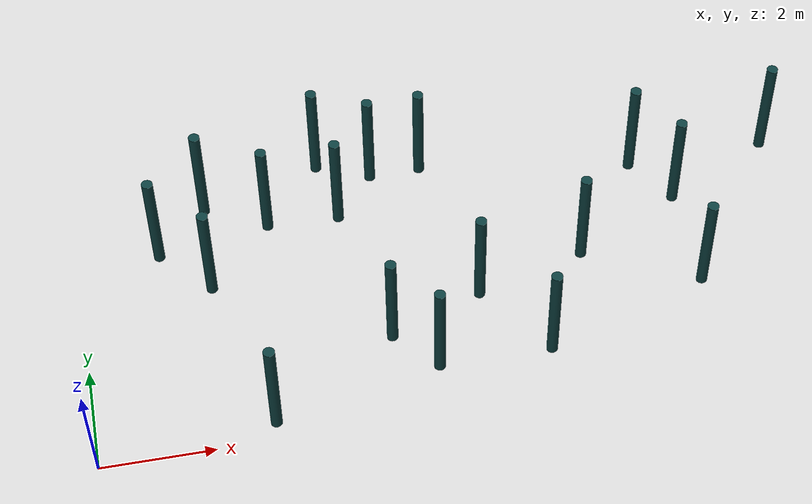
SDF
<sdf version="1.6">
 <world name="default">
  <model name="obstacle">
   <link name="link">
    <inertial>
     <mass>112.569</mass>
     <inertia><ixx>33.2512</ixx><ixy>0</ixy><ixz>0</ixz><iyy>33.2512</iyy><iyz>0</iyz><izz>0.537779</izz></inertia>
    </inertial>
    <visual name="visual">
     <geometry><cylinder><radius>0.1</radius><length>2</length></cylinder></geometry>
     <material>
      <script><name>Gazebo/Grey</name><uri>file://media/materials/scripts/gazebo.material</uri></script>
      <shader type="pixel"><normal_map>__default__</normal_map></shader>
      <ambient>0.05 0.25 0.25 1</ambient>
      <diffuse>0.3 0.3 0.3 1</diffuse>
      <specular>0.01 0.01 0.01 1</specular>
      <emissive>0.1 0.1 0.1 1</emissive>
      <lighting>1</lighting>
     </material>
    </visual>
    <collision name="collision">
     <geometry><cylinder><radius>0.097748</radius><length>1.87509</length></cylinder></geometry>
     <surface>
      <friction>
       <ode><mu>1</mu><mu2>1</mu2><fdir1>0 0 0</fdir1><slip1>0</slip1><slip2>0</slip2></ode>
       <torsional>
        <coefficient>1</coefficient>
        <patch_radius>0</patch_radius>
        <surface_radius>0</surface_radius>
        <use_patch_radius>1</use_patch_radius>
        <ode><slip>0</slip></ode>
       </torsional>
      </friction>
      <bounce><restitution_coefficient>0</restitution_coefficient><threshold>1e+06</threshold></bounce>
      <contact>
       <collide_without_contact>0</collide_without_contact>
       <collide_without_contact_bitmask>1</collide_without_contact_bitmask>
       <collide_bitmask>1</collide_bitmask>
       <ode>
        <soft_cfm>0</soft_cfm>
        <soft_erp>0.2</soft_erp>
        <kp>1e+13</kp>
        <kd>1</kd>
        <max_vel>0.01</max_vel>
        <min_depth>0</min_depth>
       </ode>
       <bullet>
        <split_impulse>1</split_impulse>
        <split_impulse_penetration_threshold>-0.01</split_impulse_penetration_threshold>
        <soft_cfm>0</soft_cfm>
        <soft_erp>0.2</soft_erp>
        <kp>1e+13</kp>
        <kd>1</kd>
       </bullet>
      </contact>
     </surface>
    </collision>
   </link>
   <static>0</static>
   <pose>6.48526 5.60754 0.987551 -5.8e-05 3e-05 0.00436</pose>
  </model>
  <model name="obstacle_clone">
   <link name="link">
    <inertial>
     <mass>112.569</mass>
     <inertia><ixx>33.2512</ixx><ixy>0</ixy><ixz>0</ixz><iyy>33.2512</iyy><iyz>0</iyz><izz>0.537779</izz></inertia>
    </inertial>
    <visual name="visual">
     <geometry><cylinder><radius>0.1</radius><length>2</length></cylinder></geometry>
     <material>
      <script><name>Gazebo/Grey</name><uri>file://media/materials/scripts/gazebo.material</uri></script>
      <shader type="pixel"><normal_map>__default__</normal_map></shader>
      <ambient>0.05 0.25 0.25 1</ambient>
      <diffuse>0.3 0.3 0.3 1</diffuse>
      <specular>0.01 0.01 0.01 1</specular>
      <emissive>0.1 0.1 0.1 1</emissive>
      <lighting>1</lighting>
     </material>
    </visual>
    <collision name="collision">
     <geometry><cylinder><radius>0.097748</radius><length>1.87509</length></cylinder></geometry>
     <surface>
      <friction>
       <ode><mu>1</mu><mu2>1</mu2><fdir1>0 0 0</fdir1><slip1>0</slip1><slip2>0</slip2></ode>
       <torsional>
        <coefficient>1</coefficient>
        <patch_radius>0</patch_radius>
        <surface_radius>0</surface_radius>
        <use_patch_radius>1</use_patch_radius>
        <ode><slip>0</slip></ode>
       </torsional>
      </friction>
      <bounce><restitution_coefficient>0</restitution_coefficient><threshold>1e+06</threshold></bounce>
      <contact>
       <collide_without_contact>0</collide_without_contact>
       <collide_without_contact_bitmask>1</collide_without_contact_bitmask>
       <collide_bitmask>1</collide_bitmask>
       <ode>
        <soft_cfm>0</soft_cfm>
        <soft_erp>0.2</soft_erp>
        <kp>1e+13</kp>
        <kd>1</kd>
        <max_vel>0.01</max_vel>
        <min_depth>0</min_depth>
       </ode>
       <bullet>
        <split_impulse>1</split_impulse>
        <split_impulse_penetration_threshold>-0.01</split_impulse_penetration_threshold>
        <soft_cfm>0</soft_cfm>
        <soft_erp>0.2</soft_erp>
        <kp>1e+13</kp>
        <kd>1</kd>
       </bullet>
      </contact>
     </surface>
    </collision>
   </link>
   <static>0</static>
   <pose>1.45905 4.37795 0.987544 -3.5e-05 8e-06 0.003637</pose>
  </model>
  <model name="obstacle_clone_0">
   <link name="link">
    <inertial>
     <mass>112.569</mass>
     <inertia><ixx>33.2512</ixx><ixy>0</ixy><ixz>0</ixz><iyy>33.2512</iyy><iyz>0</iyz><izz>0.537779</izz></inertia>
    </inertial>
    <visual name="visual">
     <geometry><cylinder><radius>0.1</radius><length>2</length></cylinder></geometry>
     <material>
      <script><name>Gazebo/Grey</name><uri>file://media/materials/scripts/gazebo.material</uri></script>
      <shader type="pixel"><normal_map>__default__</normal_map></shader>
      <ambient>0.05 0.25 0.25 1</ambient>
      <diffuse>0.3 0.3 0.3 1</diffuse>
      <specular>0.01 0.01 0.01 1</specular>
      <emissive>0.1 0.1 0.1 1</emissive>
      <lighting>1</lighting>
     </material>
    </visual>
    <collision name="collision">
     <geometry><cylinder><radius>0.097748</radius><length>1.87509</length></cylinder></geometry>
     <surface>
      <friction>
       <ode><mu>1</mu><mu2>1</mu2><fdir1>0 0 0</fdir1><slip1>0</slip1><slip2>0</slip2></ode>
       <torsional>
        <coefficient>1</coefficient>
        <patch_radius>0</patch_radius>
        <surface_radius>0</surface_radius>
        <use_patch_radius>1</use_patch_radius>
        <ode><slip>0</slip></ode>
       </torsional>
      </friction>
      <bounce><restitution_coefficient>0</restitution_coefficient><threshold>1e+06</threshold></bounce>
      <contact>
       <collide_without_contact>0</collide_without_contact>
       <collide_without_contact_bitmask>1</collide_without_contact_bitmask>
       <collide_bitmask>1</collide_bitmask>
       <ode>
        <soft_cfm>0</soft_cfm>
        <soft_erp>0.2</soft_erp>
        <kp>1e+13</kp>
        <kd>1</kd>
        <max_vel>0.01</max_vel>
        <min_depth>0</min_depth>
       </ode>
       <bullet>
        <split_impulse>1</split_impulse>
        <split_impulse_penetration_threshold>-0.01</split_impulse_penetration_threshold>
        <soft_cfm>0</soft_cfm>
        <soft_erp>0.2</soft_erp>
        <kp>1e+13</kp>
        <kd>1</kd>
       </bullet>
      </contact>
     </surface>
    </collision>
   </link>
   <static>0</static>
   <pose>3.49251 4.73719 0.987541 -5.7e-05 2.6e-05 0.006761</pose>
  </model>
  <model name="obstacle_clone_1">
   <link name="link">
    <inertial>
     <mass>112.569</mass>
     <inertia><ixx>33.2512</ixx><ixy>0</ixy><ixz>0</ixz><iyy>33.2512</iyy><iyz>0</iyz><izz>0.537779</izz></inertia>
    </inertial>
    <visual name="visual">
     <geometry><cylinder><radius>0.1</radius><length>2</length></cylinder></geometry>
     <material>
      <script><name>Gazebo/Grey</name><uri>file://media/materials/scripts/gazebo.material</uri></script>
      <shader type="pixel"><normal_map>__default__</normal_map></shader>
      <ambient>0.05 0.25 0.25 1</ambient>
      <diffuse>0.3 0.3 0.3 1</diffuse>
      <specular>0.01 0.01 0.01 1</specular>
      <emissive>0.1 0.1 0.1 1</emissive>
      <lighting>1</lighting>
     </material>
    </visual>
    <collision name="collision">
     <geometry><cylinder><radius>0.097748</radius><length>1.87509</length></cylinder></geometry>
     <surface>
      <friction>
       <ode><mu>1</mu><mu2>1</mu2><fdir1>0 0 0</fdir1><slip1>0</slip1><slip2>0</slip2></ode>
       <torsional>
        <coefficient>1</coefficient>
        <patch_radius>0</patch_radius>
        <surface_radius>0</surface_radius>
        <use_patch_radius>1</use_patch_radius>
        <ode><slip>0</slip></ode>
       </torsional>
      </friction>
      <bounce><restitution_coefficient>0</restitution_coefficient><threshold>1e+06</threshold></bounce>
      <contact>
       <collide_without_contact>0</collide_without_contact>
       <collide_without_contact_bitmask>1</collide_without_contact_bitmask>
       <collide_bitmask>1</collide_bitmask>
       <ode>
        <soft_cfm>0</soft_cfm>
        <soft_erp>0.2</soft_erp>
        <kp>1e+13</kp>
        <kd>1</kd>
        <max_vel>0.01</max_vel>
        <min_depth>0</min_depth>
       </ode>
       <bullet>
        <split_impulse>1</split_impulse>
        <split_impulse_penetration_threshold>-0.01</split_impulse_penetration_threshold>
        <soft_cfm>0</soft_cfm>
        <soft_erp>0.2</soft_erp>
        <kp>1e+13</kp>
        <kd>1</kd>
       </bullet>
      </contact>
     </surface>
    </collision>
   </link>
   <static>0</static>
   <pose>5.30401 1.78357 0.987542 -6e-05 2.8e-05 0.006723</pose>
  </model>
  <model name="obstacle_clone_4">
   <link name="link">
    <inertial>
     <mass>112.569</mass>
     <inertia><ixx>33.2512</ixx><ixy>0</ixy><ixz>0</ixz><iyy>33.2512</iyy><iyz>0</iyz><izz>0.537779</izz></inertia>
    </inertial>
    <visual name="visual">
     <geometry><cylinder><radius>0.1</radius><length>2</length></cylinder></geometry>
     <material>
      <script><name>Gazebo/Grey</name><uri>file://media/materials/scripts/gazebo.material</uri></script>
      <shader type="pixel"><normal_map>__default__</normal_map></shader>
      <ambient>0.05 0.25 0.25 1</ambient>
      <diffuse>0.3 0.3 0.3 1</diffuse>
      <specular>0.01 0.01 0.01 1</specular>
      <emissive>0.1 0.1 0.1 1</emissive>
      <lighting>1</lighting>
     </material>
    </visual>
    <collision name="collision">
     <geometry><cylinder><radius>0.097748</radius><length>1.87509</length></cylinder></geometry>
     <surface>
      <friction>
       <ode><mu>1</mu><mu2>1</mu2><fdir1>0 0 0</fdir1><slip1>0</slip1><slip2>0</slip2></ode>
       <torsional>
        <coefficient>1</coefficient>
        <patch_radius>0</patch_radius>
        <surface_radius>0</surface_radius>
        <use_patch_radius>1</use_patch_radius>
        <ode><slip>0</slip></ode>
       </torsional>
      </friction>
      <bounce><restitution_coefficient>0</restitution_coefficient><threshold>1e+06</threshold></bounce>
      <contact>
       <collide_without_contact>0</collide_without_contact>
       <collide_without_contact_bitmask>1</collide_without_contact_bitmask>
       <collide_bitmask>1</collide_bitmask>
       <ode>
        <soft_cfm>0</soft_cfm>
        <soft_erp>0.2</soft_erp>
        <kp>1e+13</kp>
        <kd>1</kd>
        <max_vel>0.01</max_vel>
        <min_depth>0</min_depth>
       </ode>
       <bullet>
        <split_impulse>1</split_impulse>
        <split_impulse_penetration_threshold>-0.01</split_impulse_penetration_threshold>
        <soft_cfm>0</soft_cfm>
        <soft_erp>0.2</soft_erp>
        <kp>1e+13</kp>
        <kd>1</kd>
       </bullet>
      </contact>
     </surface>
    </collision>
   </link>
   <static>0</static>
   <pose>7.00036 2.43391 0.987542 -5.6e-05 2.9e-05 0.006587</pose>
  </model>
  <model name="obstacle_clone_7">
   <link name="link">
    <inertial>
     <mass>112.569</mass>
     <inertia><ixx>33.2512</ixx><ixy>0</ixy><ixz>0</ixz><iyy>33.2512</iyy><iyz>0</iyz><izz>0.537779</izz></inertia>
    </inertial>
    <visual name="visual">
     <geometry><cylinder><radius>0.1</radius><length>2</length></cylinder></geometry>
     <material>
      <script><name>Gazebo/Grey</name><uri>file://media/materials/scripts/gazebo.material</uri></script>
      <shader type="pixel"><normal_map>__default__</normal_map></shader>
      <ambient>0.05 0.25 0.25 1</ambient>
      <diffuse>0.3 0.3 0.3 1</diffuse>
      <specular>0.01 0.01 0.01 1</specular>
      <emissive>0.1 0.1 0.1 1</emissive>
      <lighting>1</lighting>
     </material>
    </visual>
    <collision name="collision">
     <geometry><cylinder><radius>0.097748</radius><length>1.87509</length></cylinder></geometry>
     <surface>
      <friction>
       <ode><mu>1</mu><mu2>1</mu2><fdir1>0 0 0</fdir1><slip1>0</slip1><slip2>0</slip2></ode>
       <torsional>
        <coefficient>1</coefficient>
        <patch_radius>0</patch_radius>
        <surface_radius>0</surface_radius>
        <use_patch_radius>1</use_patch_radius>
        <ode><slip>0</slip></ode>
       </torsional>
      </friction>
      <bounce><restitution_coefficient>0</restitution_coefficient><threshold>1e+06</threshold></bounce>
      <contact>
       <collide_without_contact>0</collide_without_contact>
       <collide_without_contact_bitmask>1</collide_without_contact_bitmask>
       <collide_bitmask>1</collide_bitmask>
       <ode>
        <soft_cfm>0</soft_cfm>
        <soft_erp>0.2</soft_erp>
        <kp>1e+13</kp>
        <kd>1</kd>
        <max_vel>0.01</max_vel>
        <min_depth>0</min_depth>
       </ode>
       <bullet>
        <split_impulse>1</split_impulse>
        <split_impulse_penetration_threshold>-0.01</split_impulse_penetration_threshold>
        <soft_cfm>0</soft_cfm>
        <soft_erp>0.2</soft_erp>
        <kp>1e+13</kp>
        <kd>1</kd>
       </bullet>
      </contact>
     </surface>
    </collision>
   </link>
   <static>0</static>
   <pose>2.31368 3.4611 0.987545 -2.9e-05 -4.3e-05 0.004628</pose>
  </model>
  <model name="obstacle_clone_10">
   <link name="link">
    <inertial>
     <mass>112.569</mass>
     <inertia><ixx>33.2512</ixx><ixy>0</ixy><ixz>0</ixz><iyy>33.2512</iyy><iyz>0</iyz><izz>0.537779</izz></inertia>
    </inertial>
    <visual name="visual">
     <geometry><cylinder><radius>0.1</radius><length>2</length></cylinder></geometry>
     <material>
      <script><name>Gazebo/Grey</name><uri>file://media/materials/scripts/gazebo.material</uri></script>
      <shader type="pixel"><normal_map>__default__</normal_map></shader>
      <ambient>0.05 0.25 0.25 1</ambient>
      <diffuse>0.3 0.3 0.3 1</diffuse>
      <specular>0.01 0.01 0.01 1</specular>
      <emissive>0.1 0.1 0.1 1</emissive>
      <lighting>1</lighting>
     </material>
    </visual>
    <collision name="collision">
     <geometry><cylinder><radius>0.097748</radius><length>1.87509</length></cylinder></geometry>
     <surface>
      <friction>
       <ode><mu>1</mu><mu2>1</mu2><fdir1>0 0 0</fdir1><slip1>0</slip1><slip2>0</slip2></ode>
       <torsional>
        <coefficient>1</coefficient>
        <patch_radius>0</patch_radius>
        <surface_radius>0</surface_radius>
        <use_patch_radius>1</use_patch_radius>
        <ode><slip>0</slip></ode>
       </torsional>
      </friction>
      <bounce><restitution_coefficient>0</restitution_coefficient><threshold>1e+06</threshold></bounce>
      <contact>
       <collide_without_contact>0</collide_without_contact>
       <collide_without_contact_bitmask>1</collide_without_contact_bitmask>
       <collide_bitmask>1</collide_bitmask>
       <ode>
        <soft_cfm>0</soft_cfm>
        <soft_erp>0.2</soft_erp>
        <kp>1e+13</kp>
        <kd>1</kd>
        <max_vel>0.01</max_vel>
        <min_depth>0</min_depth>
       </ode>
       <bullet>
        <split_impulse>1</split_impulse>
        <split_impulse_penetration_threshold>-0.01</split_impulse_penetration_threshold>
        <soft_cfm>0</soft_cfm>
        <soft_erp>0.2</soft_erp>
        <kp>1e+13</kp>
        <kd>1</kd>
       </bullet>
      </contact>
     </surface>
    </collision>
   </link>
   <static>0</static>
   <pose>4.58014 6.00004 0.987543 -3e-05 1.3e-05 0.00599</pose>
  </model>
  <model name="obstacle_clone_11">
   <link name="link">
    <inertial>
     <mass>112.569</mass>
     <inertia><ixx>33.2512</ixx><ixy>0</ixy><ixz>0</ixz><iyy>33.2512</iyy><iyz>0</iyz><izz>0.537779</izz></inertia>
    </inertial>
    <visual name="visual">
     <geometry><cylinder><radius>0.1</radius><length>2</length></cylinder></geometry>
     <material>
      <script><name>Gazebo/Grey</name><uri>file://media/materials/scripts/gazebo.material</uri></script>
      <shader type="pixel"><normal_map>__default__</normal_map></shader>
      <ambient>0.05 0.25 0.25 1</ambient>
      <diffuse>0.3 0.3 0.3 1</diffuse>
      <specular>0.01 0.01 0.01 1</specular>
      <emissive>0.1 0.1 0.1 1</emissive>
      <lighting>1</lighting>
     </material>
    </visual>
    <collision name="collision">
     <geometry><cylinder><radius>0.097748</radius><length>1.87509</length></cylinder></geometry>
     <surface>
      <friction>
       <ode><mu>1</mu><mu2>1</mu2><fdir1>0 0 0</fdir1><slip1>0</slip1><slip2>0</slip2></ode>
       <torsional>
        <coefficient>1</coefficient>
        <patch_radius>0</patch_radius>
        <surface_radius>0</surface_radius>
        <use_patch_radius>1</use_patch_radius>
        <ode><slip>0</slip></ode>
       </torsional>
      </friction>
      <bounce><restitution_coefficient>0</restitution_coefficient><threshold>1e+06</threshold></bounce>
      <contact>
       <collide_without_contact>0</collide_without_contact>
       <collide_without_contact_bitmask>1</collide_without_contact_bitmask>
       <collide_bitmask>1</collide_bitmask>
       <ode>
        <soft_cfm>0</soft_cfm>
        <soft_erp>0.2</soft_erp>
        <kp>1e+13</kp>
        <kd>1</kd>
        <max_vel>0.01</max_vel>
        <min_depth>0</min_depth>
       </ode>
       <bullet>
        <split_impulse>1</split_impulse>
        <split_impulse_penetration_threshold>-0.01</split_impulse_penetration_threshold>
        <soft_cfm>0</soft_cfm>
        <soft_erp>0.2</soft_erp>
        <kp>1e+13</kp>
        <kd>1</kd>
       </bullet>
      </contact>
     </surface>
    </collision>
   </link>
   <static>0</static>
   <pose>9.00035 3.00008 0.987542 -6.3e-05 2.8e-05 0.006623</pose>
  </model>
  <model name="obstacle_clone_13">
   <link name="link">
    <inertial>
     <mass>112.569</mass>
     <inertia><ixx>33.2512</ixx><ixy>0</ixy><ixz>0</ixz><iyy>33.2512</iyy><iyz>0</iyz><izz>0.537779</izz></inertia>
    </inertial>
    <visual name="visual">
     <geometry><cylinder><radius>0.1</radius><length>2</length></cylinder></geometry>
     <material>
      <script><name>Gazebo/Grey</name><uri>file://media/materials/scripts/gazebo.material</uri></script>
      <shader type="pixel"><normal_map>__default__</normal_map></shader>
      <ambient>0.05 0.25 0.25 1</ambient>
      <diffuse>0.3 0.3 0.3 1</diffuse>
      <specular>0.01 0.01 0.01 1</specular>
      <emissive>0.1 0.1 0.1 1</emissive>
      <lighting>1</lighting>
     </material>
    </visual>
    <collision name="collision">
     <geometry><cylinder><radius>0.097748</radius><length>1.87509</length></cylinder></geometry>
     <surface>
      <friction>
       <ode><mu>1</mu><mu2>1</mu2><fdir1>0 0 0</fdir1><slip1>0</slip1><slip2>0</slip2></ode>
       <torsional>
        <coefficient>1</coefficient>
        <patch_radius>0</patch_radius>
        <surface_radius>0</surface_radius>
        <use_patch_radius>1</use_patch_radius>
        <ode><slip>0</slip></ode>
       </torsional>
      </friction>
      <bounce><restitution_coefficient>0</restitution_coefficient><threshold>1e+06</threshold></bounce>
      <contact>
       <collide_without_contact>0</collide_without_contact>
       <collide_without_contact_bitmask>1</collide_without_contact_bitmask>
       <collide_bitmask>1</collide_bitmask>
       <ode>
        <soft_cfm>0</soft_cfm>
        <soft_erp>0.2</soft_erp>
        <kp>1e+13</kp>
        <kd>1</kd>
        <max_vel>0.01</max_vel>
        <min_depth>0</min_depth>
       </ode>
       <bullet>
        <split_impulse>1</split_impulse>
        <split_impulse_penetration_threshold>-0.01</split_impulse_penetration_threshold>
        <soft_cfm>0</soft_cfm>
        <soft_erp>0.2</soft_erp>
        <kp>1e+13</kp>
        <kd>1</kd>
       </bullet>
      </contact>
     </surface>
    </collision>
   </link>
   <static>0</static>
   <pose>3.05159 0.36442 0.987543 -3.5e-05 6e-06 0.003633</pose>
  </model>
  <model name="obstacle_clone_14">
   <link name="link">
    <inertial>
     <mass>112.569</mass>
     <inertia><ixx>33.2512</ixx><ixy>0</ixy><ixz>0</ixz><iyy>33.2512</iyy><iyz>0</iyz><izz>0.537779</izz></inertia>
    </inertial>
    <visual name="visual">
     <geometry><cylinder><radius>0.1</radius><length>2</length></cylinder></geometry>
     <material>
      <script><name>Gazebo/Grey</name><uri>file://media/materials/scripts/gazebo.material</uri></script>
      <shader type="pixel"><normal_map>__default__</normal_map></shader>
      <ambient>0.05 0.25 0.25 1</ambient>
      <diffuse>0.3 0.3 0.3 1</diffuse>
      <specular>0.01 0.01 0.01 1</specular>
      <emissive>0.1 0.1 0.1 1</emissive>
      <lighting>1</lighting>
     </material>
    </visual>
    <collision name="collision">
     <geometry><cylinder><radius>0.097748</radius><length>1.87509</length></cylinder></geometry>
     <surface>
      <friction>
       <ode><mu>1</mu><mu2>1</mu2><fdir1>0 0 0</fdir1><slip1>0</slip1><slip2>0</slip2></ode>
       <torsional>
        <coefficient>1</coefficient>
        <patch_radius>0</patch_radius>
        <surface_radius>0</surface_radius>
        <use_patch_radius>1</use_patch_radius>
        <ode><slip>0</slip></ode>
       </torsional>
      </friction>
      <bounce><restitution_coefficient>0</restitution_coefficient><threshold>1e+06</threshold></bounce>
      <contact>
       <collide_without_contact>0</collide_without_contact>
       <collide_without_contact_bitmask>1</collide_without_contact_bitmask>
       <collide_bitmask>1</collide_bitmask>
       <ode>
        <soft_cfm>0</soft_cfm>
        <soft_erp>0.2</soft_erp>
        <kp>1e+13</kp>
        <kd>1</kd>
        <max_vel>0.01</max_vel>
        <min_depth>0</min_depth>
       </ode>
       <bullet>
        <split_impulse>1</split_impulse>
        <split_impulse_penetration_threshold>-0.01</split_impulse_penetration_threshold>
        <soft_cfm>0</soft_cfm>
        <soft_erp>0.2</soft_erp>
        <kp>1e+13</kp>
        <kd>1</kd>
       </bullet>
      </contact>
     </surface>
    </collision>
   </link>
   <static>0</static>
   <pose>4.80279 4.69306 0.987542 -5.9e-05 2.5e-05 0.006175</pose>
  </model>
  <model name="obstacle_clone_15">
   <link name="link">
    <inertial>
     <mass>112.569</mass>
     <inertia><ixx>33.2512</ixx><ixy>0</ixy><ixz>0</ixz><iyy>33.2512</iyy><iyz>0</iyz><izz>0.537779</izz></inertia>
    </inertial>
    <visual name="visual">
     <geometry><cylinder><radius>0.1</radius><length>2</length></cylinder></geometry>
     <material>
      <script><name>Gazebo/Grey</name><uri>file://media/materials/scripts/gazebo.material</uri></script>
      <shader type="pixel"><normal_map>__default__</normal_map></shader>
      <ambient>0.05 0.25 0.25 1</ambient>
      <diffuse>0.3 0.3 0.3 1</diffuse>
      <specular>0.01 0.01 0.01 1</specular>
      <emissive>0.1 0.1 0.1 1</emissive>
      <lighting>1</lighting>
     </material>
    </visual>
    <collision name="collision">
     <geometry><cylinder><radius>0.097748</radius><length>1.87509</length></cylinder></geometry>
     <surface>
      <friction>
       <ode><mu>1</mu><mu2>1</mu2><fdir1>0 0 0</fdir1><slip1>0</slip1><slip2>0</slip2></ode>
       <torsional>
        <coefficient>1</coefficient>
        <patch_radius>0</patch_radius>
        <surface_radius>0</surface_radius>
        <use_patch_radius>1</use_patch_radius>
        <ode><slip>0</slip></ode>
       </torsional>
      </friction>
      <bounce><restitution_coefficient>0</restitution_coefficient><threshold>1e+06</threshold></bounce>
      <contact>
       <collide_without_contact>0</collide_without_contact>
       <collide_without_contact_bitmask>1</collide_without_contact_bitmask>
       <collide_bitmask>1</collide_bitmask>
       <ode>
        <soft_cfm>0</soft_cfm>
        <soft_erp>0.2</soft_erp>
        <kp>1e+13</kp>
        <kd>1</kd>
        <max_vel>0.01</max_vel>
        <min_depth>0</min_depth>
       </ode>
       <bullet>
        <split_impulse>1</split_impulse>
        <split_impulse_penetration_threshold>-0.01</split_impulse_penetration_threshold>
        <soft_cfm>0</soft_cfm>
        <soft_erp>0.2</soft_erp>
        <kp>1e+13</kp>
        <kd>1</kd>
       </bullet>
      </contact>
     </surface>
    </collision>
   </link>
   <static>0</static>
   <pose>5.54289 5.58208 0.987552 -6.6e-05 2.9e-05 0.004168</pose>
  </model>
  <model name="obstacle_clone_21">
   <link name="link">
    <inertial>
     <mass>112.569</mass>
     <inertia><ixx>33.2512</ixx><ixy>0</ixy><ixz>0</ixz><iyy>33.2512</iyy><iyz>0</iyz><izz>0.537779</izz></inertia>
    </inertial>
    <visual name="visual">
     <geometry><cylinder><radius>0.1</radius><length>2</length></cylinder></geometry>
     <material>
      <script><name>Gazebo/Grey</name><uri>file://media/materials/scripts/gazebo.material</uri></script>
      <shader type="pixel"><normal_map>__default__</normal_map></shader>
      <ambient>0.05 0.25 0.25 1</ambient>
      <diffuse>0.3 0.3 0.3 1</diffuse>
      <specular>0.01 0.01 0.01 1</specular>
      <emissive>0.1 0.1 0.1 1</emissive>
      <lighting>1</lighting>
     </material>
    </visual>
    <collision name="collision">
     <geometry><cylinder><radius>0.097748</radius><length>1.87509</length></cylinder></geometry>
     <surface>
      <friction>
       <ode><mu>1</mu><mu2>1</mu2><fdir1>0 0 0</fdir1><slip1>0</slip1><slip2>0</slip2></ode>
       <torsional>
        <coefficient>1</coefficient>
        <patch_radius>0</patch_radius>
        <surface_radius>0</surface_radius>
        <use_patch_radius>1</use_patch_radius>
        <ode><slip>0</slip></ode>
       </torsional>
      </friction>
      <bounce><restitution_coefficient>0</restitution_coefficient><threshold>1e+06</threshold></bounce>
      <contact>
       <collide_without_contact>0</collide_without_contact>
       <collide_without_contact_bitmask>1</collide_without_contact_bitmask>
       <collide_bitmask>1</collide_bitmask>
       <ode>
        <soft_cfm>0</soft_cfm>
        <soft_erp>0.2</soft_erp>
        <kp>1e+13</kp>
        <kd>1</kd>
        <max_vel>0.01</max_vel>
        <min_depth>0</min_depth>
       </ode>
       <bullet>
        <split_impulse>1</split_impulse>
        <split_impulse_penetration_threshold>-0.01</split_impulse_penetration_threshold>
        <soft_cfm>0</soft_cfm>
        <soft_erp>0.2</soft_erp>
        <kp>1e+13</kp>
        <kd>1</kd>
       </bullet>
      </contact>
     </surface>
    </collision>
   </link>
   <static>0</static>
   <pose>10.402 4.93697 0.987542 -5.9e-05 2.5e-05 0.006326</pose>
  </model>
  <model name="obstacle_clone_23">
   <link name="link">
    <inertial>
     <mass>112.569</mass>
     <inertia><ixx>33.2512</ixx><ixy>0</ixy><ixz>0</ixz><iyy>33.2512</iyy><iyz>0</iyz><izz>0.537779</izz></inertia>
    </inertial>
    <visual name="visual">
     <geometry><cylinder><radius>0.1</radius><length>2</length></cylinder></geometry>
     <material>
      <script><name>Gazebo/Grey</name><uri>file://media/materials/scripts/gazebo.material</uri></script>
      <shader type="pixel"><normal_map>__default__</normal_map></shader>
      <ambient>0.05 0.25 0.25 1</ambient>
      <diffuse>0.3 0.3 0.3 1</diffuse>
      <specular>0.01 0.01 0.01 1</specular>
      <emissive>0.1 0.1 0.1 1</emissive>
      <lighting>1</lighting>
     </material>
    </visual>
    <collision name="collision">
     <geometry><cylinder><radius>0.097748</radius><length>1.87509</length></cylinder></geometry>
     <surface>
      <friction>
       <ode><mu>1</mu><mu2>1</mu2><fdir1>0 0 0</fdir1><slip1>0</slip1><slip2>0</slip2></ode>
       <torsional>
        <coefficient>1</coefficient>
        <patch_radius>0</patch_radius>
        <surface_radius>0</surface_radius>
        <use_patch_radius>1</use_patch_radius>
        <ode><slip>0</slip></ode>
       </torsional>
      </friction>
      <bounce><restitution_coefficient>0</restitution_coefficient><threshold>1e+06</threshold></bounce>
      <contact>
       <collide_without_contact>0</collide_without_contact>
       <collide_without_contact_bitmask>1</collide_without_contact_bitmask>
       <collide_bitmask>1</collide_bitmask>
       <ode>
        <soft_cfm>0</soft_cfm>
        <soft_erp>0.2</soft_erp>
        <kp>1e+13</kp>
        <kd>1</kd>
        <max_vel>0.01</max_vel>
        <min_depth>0</min_depth>
       </ode>
       <bullet>
        <split_impulse>1</split_impulse>
        <split_impulse_penetration_threshold>-0.01</split_impulse_penetration_threshold>
        <soft_cfm>0</soft_cfm>
        <soft_erp>0.2</soft_erp>
        <kp>1e+13</kp>
        <kd>1</kd>
       </bullet>
      </contact>
     </surface>
    </collision>
   </link>
   <static>0</static>
   <pose>11.0003 2.00007 0.987542 -6.1e-05 2.7e-05 0.006218</pose>
  </model>
  <model name="obstacle_clone_24">
   <link name="link">
    <inertial>
     <mass>112.569</mass>
     <inertia><ixx>33.2512</ixx><ixy>0</ixy><ixz>0</ixz><iyy>33.2512</iyy><iyz>0</iyz><izz>0.537779</izz></inertia>
    </inertial>
    <visual name="visual">
     <geometry><cylinder><radius>0.1</radius><length>2</length></cylinder></geometry>
     <material>
      <script><name>Gazebo/Grey</name><uri>file://media/materials/scripts/gazebo.material</uri></script>
      <shader type="pixel"><normal_map>__default__</normal_map></shader>
      <ambient>0.05 0.25 0.25 1</ambient>
      <diffuse>0.3 0.3 0.3 1</diffuse>
      <specular>0.01 0.01 0.01 1</specular>
      <emissive>0.1 0.1 0.1 1</emissive>
      <lighting>1</lighting>
     </material>
    </visual>
    <collision name="collision">
     <geometry><cylinder><radius>0.097748</radius><length>1.87509</length></cylinder></geometry>
     <surface>
      <friction>
       <ode><mu>1</mu><mu2>1</mu2><fdir1>0 0 0</fdir1><slip1>0</slip1><slip2>0</slip2></ode>
       <torsional>
        <coefficient>1</coefficient>
        <patch_radius>0</patch_radius>
        <surface_radius>0</surface_radius>
        <use_patch_radius>1</use_patch_radius>
        <ode><slip>0</slip></ode>
       </torsional>
      </friction>
      <bounce><restitution_coefficient>0</restitution_coefficient><threshold>1e+06</threshold></bounce>
      <contact>
       <collide_without_contact>0</collide_without_contact>
       <collide_without_contact_bitmask>1</collide_without_contact_bitmask>
       <collide_bitmask>1</collide_bitmask>
       <ode>
        <soft_cfm>0</soft_cfm>
        <soft_erp>0.2</soft_erp>
        <kp>1e+13</kp>
        <kd>1</kd>
        <max_vel>0.01</max_vel>
        <min_depth>0</min_depth>
       </ode>
       <bullet>
        <split_impulse>1</split_impulse>
        <split_impulse_penetration_threshold>-0.01</split_impulse_penetration_threshold>
        <soft_cfm>0</soft_cfm>
        <soft_erp>0.2</soft_erp>
        <kp>1e+13</kp>
        <kd>1</kd>
       </bullet>
      </contact>
     </surface>
    </collision>
   </link>
   <static>0</static>
   <pose>8.00032 1.00007 0.987552 -6.4e-05 2.8e-05 0.006315</pose>
  </model>
  <model name="obstacle_clone_25">
   <link name="link">
    <inertial>
     <mass>112.569</mass>
     <inertia><ixx>33.2512</ixx><ixy>0</ixy><ixz>0</ixz><iyy>33.2512</iyy><iyz>0</iyz><izz>0.537779</izz></inertia>
    </inertial>
    <visual name="visual">
     <geometry><cylinder><radius>0.1</radius><length>2</length></cylinder></geometry>
     <material>
      <script><name>Gazebo/Grey</name><uri>file://media/materials/scripts/gazebo.material</uri></script>
      <shader type="pixel"><normal_map>__default__</normal_map></shader>
      <ambient>0.05 0.25 0.25 1</ambient>
      <diffuse>0.3 0.3 0.3 1</diffuse>
      <specular>0.01 0.01 0.01 1</specular>
      <emissive>0.1 0.1 0.1 1</emissive>
      <lighting>1</lighting>
     </material>
    </visual>
    <collision name="collision">
     <geometry><cylinder><radius>0.097748</radius><length>1.87509</length></cylinder></geometry>
     <surface>
      <friction>
       <ode><mu>1</mu><mu2>1</mu2><fdir1>0 0 0</fdir1><slip1>0</slip1><slip2>0</slip2></ode>
       <torsional>
        <coefficient>1</coefficient>
        <patch_radius>0</patch_radius>
        <surface_radius>0</surface_radius>
        <use_patch_radius>1</use_patch_radius>
        <ode><slip>0</slip></ode>
       </torsional>
      </friction>
      <bounce><restitution_coefficient>0</restitution_coefficient><threshold>1e+06</threshold></bounce>
      <contact>
       <collide_without_contact>0</collide_without_contact>
       <collide_without_contact_bitmask>1</collide_without_contact_bitmask>
       <collide_bitmask>1</collide_bitmask>
       <ode>
        <soft_cfm>0</soft_cfm>
        <soft_erp>0.2</soft_erp>
        <kp>1e+13</kp>
        <kd>1</kd>
        <max_vel>0.01</max_vel>
        <min_depth>0</min_depth>
       </ode>
       <bullet>
        <split_impulse>1</split_impulse>
        <split_impulse_penetration_threshold>-0.01</split_impulse_penetration_threshold>
        <soft_cfm>0</soft_cfm>
        <soft_erp>0.2</soft_erp>
        <kp>1e+13</kp>
        <kd>1</kd>
       </bullet>
      </contact>
     </surface>
    </collision>
   </link>
   <static>0</static>
   <pose>6.0003 1.00006 0.987542 -6.1e-05 2.8e-05 0.006126</pose>
  </model>
  <model name="obstacle_clone_26">
   <link name="link">
    <inertial>
     <mass>112.569</mass>
     <inertia><ixx>33.2512</ixx><ixy>0</ixy><ixz>0</ixz><iyy>33.2512</iyy><iyz>0</iyz><izz>0.537779</izz></inertia>
    </inertial>
    <visual name="visual">
     <geometry><cylinder><radius>0.1</radius><length>2</length></cylinder></geometry>
     <material>
      <script><name>Gazebo/Grey</name><uri>file://media/materials/scripts/gazebo.material</uri></script>
      <shader type="pixel"><normal_map>__default__</normal_map></shader>
      <ambient>0.05 0.25 0.25 1</ambient>
      <diffuse>0.3 0.3 0.3 1</diffuse>
      <specular>0.01 0.01 0.01 1</specular>
      <emissive>0.1 0.1 0.1 1</emissive>
      <lighting>1</lighting>
     </material>
    </visual>
    <collision name="collision">
     <geometry><cylinder><radius>0.097748</radius><length>1.87509</length></cylinder></geometry>
     <surface>
      <friction>
       <ode><mu>1</mu><mu2>1</mu2><fdir1>0 0 0</fdir1><slip1>0</slip1><slip2>0</slip2></ode>
       <torsional>
        <coefficient>1</coefficient>
        <patch_radius>0</patch_radius>
        <surface_radius>0</surface_radius>
        <use_patch_radius>1</use_patch_radius>
        <ode><slip>0</slip></ode>
       </torsional>
      </friction>
      <bounce><restitution_coefficient>0</restitution_coefficient><threshold>1e+06</threshold></bounce>
      <contact>
       <collide_without_contact>0</collide_without_contact>
       <collide_without_contact_bitmask>1</collide_without_contact_bitmask>
       <collide_bitmask>1</collide_bitmask>
       <ode>
        <soft_cfm>0</soft_cfm>
        <soft_erp>0.2</soft_erp>
        <kp>1e+13</kp>
        <kd>1</kd>
        <max_vel>0.01</max_vel>
        <min_depth>0</min_depth>
       </ode>
       <bullet>
        <split_impulse>1</split_impulse>
        <split_impulse_penetration_threshold>-0.01</split_impulse_penetration_threshold>
        <soft_cfm>0</soft_cfm>
        <soft_erp>0.2</soft_erp>
        <kp>1e+13</kp>
        <kd>1</kd>
       </bullet>
      </contact>
     </surface>
    </collision>
   </link>
   <static>0</static>
   <pose>13.0003 5.00007 0.987541 -5.1e-05 3.2e-05 0.006131</pose>
  </model>
  <model name="obstacle_clone_29">
   <link name="link">
    <inertial>
     <mass>112.569</mass>
     <inertia><ixx>33.2512</ixx><ixy>0</ixy><ixz>0</ixz><iyy>33.2512</iyy><iyz>0</iyz><izz>0.537779</izz></inertia>
    </inertial>
    <visual name="visual">
     <geometry><cylinder><radius>0.1</radius><length>2</length></cylinder></geometry>
     <material>
      <script><name>Gazebo/Grey</name><uri>file://media/materials/scripts/gazebo.material</uri></script>
      <shader type="pixel"><normal_map>__default__</normal_map></shader>
      <ambient>0.05 0.25 0.25 1</ambient>
      <diffuse>0.3 0.3 0.3 1</diffuse>
      <specular>0.01 0.01 0.01 1</specular>
      <emissive>0.1 0.1 0.1 1</emissive>
      <lighting>1</lighting>
     </material>
    </visual>
    <collision name="collision">
     <geometry><cylinder><radius>0.097748</radius><length>1.87509</length></cylinder></geometry>
     <surface>
      <friction>
       <ode><mu>1</mu><mu2>1</mu2><fdir1>0 0 0</fdir1><slip1>0</slip1><slip2>0</slip2></ode>
       <torsional>
        <coefficient>1</coefficient>
        <patch_radius>0</patch_radius>
        <surface_radius>0</surface_radius>
        <use_patch_radius>1</use_patch_radius>
        <ode><slip>0</slip></ode>
       </torsional>
      </friction>
      <bounce><restitution_coefficient>0</restitution_coefficient><threshold>1e+06</threshold></bounce>
      <contact>
       <collide_without_contact>0</collide_without_contact>
       <collide_without_contact_bitmask>1</collide_without_contact_bitmask>
       <collide_bitmask>1</collide_bitmask>
       <ode>
        <soft_cfm>0</soft_cfm>
        <soft_erp>0.2</soft_erp>
        <kp>1e+13</kp>
        <kd>1</kd>
        <max_vel>0.01</max_vel>
        <min_depth>0</min_depth>
       </ode>
       <bullet>
        <split_impulse>1</split_impulse>
        <split_impulse_penetration_threshold>-0.01</split_impulse_penetration_threshold>
        <soft_cfm>0</soft_cfm>
        <soft_erp>0.2</soft_erp>
        <kp>1e+13</kp>
        <kd>1</kd>
       </bullet>
      </contact>
     </surface>
    </collision>
   </link>
   <static>0</static>
   <pose>11.0003 4.00005 0.987541 -5.4e-05 2.2e-05 0.005935</pose>
  </model>
  <model name="obstacle_clone_31">
   <link name="link">
    <inertial>
     <mass>112.569</mass>
     <inertia><ixx>33.2512</ixx><ixy>0</ixy><ixz>0</ixz><iyy>33.2512</iyy><iyz>0</iyz><izz>0.537779</izz></inertia>
    </inertial>
    <visual name="visual">
     <geometry><cylinder><radius>0.1</radius><length>2</length></cylinder></geometry>
     <material>
      <script><name>Gazebo/Grey</name><uri>file://media/materials/scripts/gazebo.material</uri></script>
      <shader type="pixel"><normal_map>__default__</normal_map></shader>
      <ambient>0.05 0.25 0.25 1</ambient>
      <diffuse>0.3 0.3 0.3 1</diffuse>
      <specular>0.01 0.01 0.01 1</specular>
      <emissive>0.1 0.1 0.1 1</emissive>
      <lighting>1</lighting>
     </material>
    </visual>
    <collision name="collision">
     <geometry><cylinder><radius>0.097748</radius><length>1.87509</length></cylinder></geometry>
     <surface>
      <friction>
       <ode><mu>1</mu><mu2>1</mu2><fdir1>0 0 0</fdir1><slip1>0</slip1><slip2>0</slip2></ode>
       <torsional>
        <coefficient>1</coefficient>
        <patch_radius>0</patch_radius>
        <surface_radius>0</surface_radius>
        <use_patch_radius>1</use_patch_radius>
        <ode><slip>0</slip></ode>
       </torsional>
      </friction>
      <bounce><restitution_coefficient>0</restitution_coefficient><threshold>1e+06</threshold></bounce>
      <contact>
       <collide_without_contact>0</collide_without_contact>
       <collide_without_contact_bitmask>1</collide_without_contact_bitmask>
       <collide_bitmask>1</collide_bitmask>
       <ode>
        <soft_cfm>0</soft_cfm>
        <soft_erp>0.2</soft_erp>
        <kp>1e+13</kp>
        <kd>1</kd>
        <max_vel>0.01</max_vel>
        <min_depth>0</min_depth>
       </ode>
       <bullet>
        <split_impulse>1</split_impulse>
        <split_impulse_penetration_threshold>-0.01</split_impulse_penetration_threshold>
        <soft_cfm>0</soft_cfm>
        <soft_erp>0.2</soft_erp>
        <kp>1e+13</kp>
        <kd>1</kd>
       </bullet>
      </contact>
     </surface>
    </collision>
   </link>
   <static>0</static>
   <pose>2.3825 5.32989 0.987545 -9e-06 -4.8e-05 0.0051</pose>
  </model>
 </world>
</sdf>
